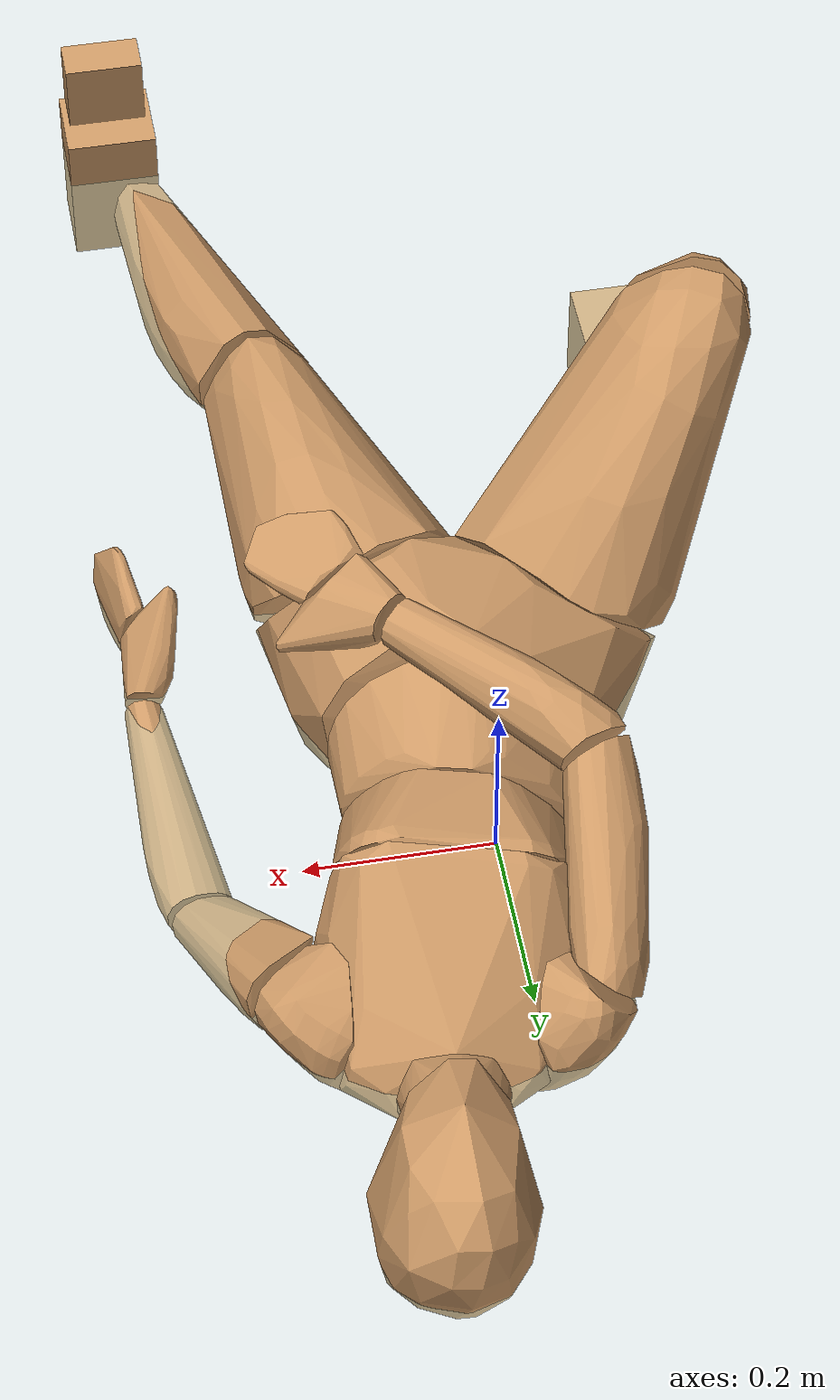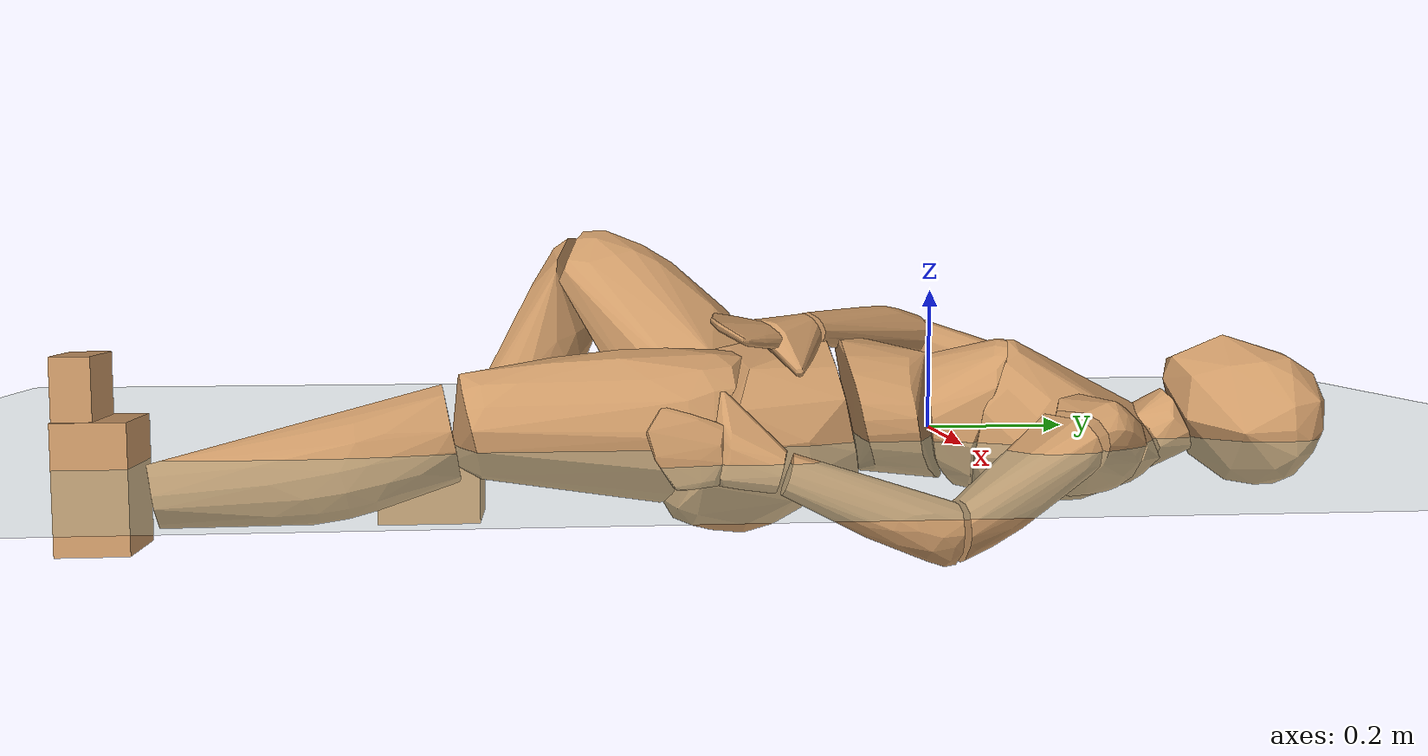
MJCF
<mujoco model="humanoid">
  <compiler coordinate="local"/>
  <default>
    <joint damping="0.0" armature="0.01" stiffness="0.0" limited="true"/>
    <geom conaffinity="1" condim="3" contype="7" margin="0.001" rgba="0.8 0.6 .4 1"/>
  </default>
  <asset>
    <texture type="skybox" builtin="gradient" rgb1=".4 .5 .6" rgb2="0 0 0" width="100" height="100"/>
    <texture builtin="flat" height="1278" mark="cross" markrgb="1 1 1" name="texgeom" random="0.01" rgb1="0.8 0.6 0.4" rgb2="0.8 0.6 0.4" type="cube" width="127"/>
    <texture builtin="checker" height="100" name="texplane" rgb1="0 0 0" rgb2="0.8 0.8 0.8" type="2d" width="100"/>
    <material name="MatPlane" reflectance="0.5" shininess="1" specular="1" texrepeat="60 60" texture="texplane"/>
    <material name="geom" texture="texgeom" texuniform="true"/>
    <mesh file="smpl_meshes/geom/Pelvis.stl" name="Pelvis_mesh"/>
    <mesh file="smpl_meshes/geom/L_Hip.stl" name="L_Hip_mesh"/>
    <mesh file="smpl_meshes/geom/R_Hip.stl" name="R_Hip_mesh"/>
    <mesh file="smpl_meshes/geom/Torso.stl" name="Torso_mesh"/>
    <mesh file="smpl_meshes/geom/L_Knee.stl" name="L_Knee_mesh"/>
    <mesh file="smpl_meshes/geom/R_Knee.stl" name="R_Knee_mesh"/>
    <mesh file="smpl_meshes/geom/Spine.stl" name="Spine_mesh"/>
    <mesh file="smpl_meshes/geom/L_Ankle.stl" name="L_Ankle_mesh"/>
    <mesh file="smpl_meshes/geom/R_Ankle.stl" name="R_Ankle_mesh"/>
    <mesh file="smpl_meshes/geom/Chest.stl" name="Chest_mesh"/>
    <mesh file="smpl_meshes/geom/L_Toe.stl" name="L_Toe_mesh"/>
    <mesh file="smpl_meshes/geom/R_Toe.stl" name="R_Toe_mesh"/>
    <mesh file="smpl_meshes/geom/Neck.stl" name="Neck_mesh"/>
    <mesh file="smpl_meshes/geom/L_Thorax.stl" name="L_Thorax_mesh"/>
    <mesh file="smpl_meshes/geom/R_Thorax.stl" name="R_Thorax_mesh"/>
    <mesh file="smpl_meshes/geom/Head.stl" name="Head_mesh"/>
    <mesh file="smpl_meshes/geom/L_Shoulder.stl" name="L_Shoulder_mesh"/>
    <mesh file="smpl_meshes/geom/R_Shoulder.stl" name="R_Shoulder_mesh"/>
    <mesh file="smpl_meshes/geom/L_Elbow.stl" name="L_Elbow_mesh"/>
    <mesh file="smpl_meshes/geom/R_Elbow.stl" name="R_Elbow_mesh"/>
    <mesh file="smpl_meshes/geom/L_Wrist.stl" name="L_Wrist_mesh"/>
    <mesh file="smpl_meshes/geom/R_Wrist.stl" name="R_Wrist_mesh"/>
    <mesh file="smpl_meshes/geom/L_Hand.stl" name="L_Hand_mesh"/>
    <mesh file="smpl_meshes/geom/R_Hand.stl" name="R_Hand_mesh"/>
  </asset>
  <worldbody>
    <light cutoff="100" diffuse="1 1 1" dir="-0 0 -1.3" directional="true" exponent="1" pos="0 0 1.3" specular=".1 .1 .1"/>
    <geom conaffinity="1" condim="3" name="floor" pos="0 0 0" rgba="0.8 0.9 0.8 1" size="100 100 .2" type="plane" material="MatPlane"/>
    <body name="Pelvis" pos="0.0001 -0.2202 0.0181">
      <freejoint name="Pelvis"/>
      <geom type="mesh" mesh="Pelvis_mesh" density="1000" contype="1" conaffinity="1"/>
      <body name="L_Hip" pos="0.055 -0.1072 -0.0155">
        <joint name="L_Hip_x" type="hinge" pos="0 0 0" axis="1 0 0" user="800 80 1 500" armature="0.01" range="-90.0000 90.0000" damping="0.1" stiffness="10"/>
        <joint name="L_Hip_y" type="hinge" pos="0 0 0" axis="0 1 0" user="800 80 1 500" armature="0.01" range="-90.0000 90.0000" damping="0.1" stiffness="10"/>
        <joint name="L_Hip_z" type="hinge" pos="0 0 0" axis="0 0 1" user="800 80 1 500" armature="0.01" range="-90.0000 90.0000" damping="0.1" stiffness="10"/>
        <geom type="mesh" mesh="L_Hip_mesh" density="1000" contype="1" conaffinity="1"/>
        <body name="L_Knee" pos="0.1071 -0.368 0.0226">
          <joint name="L_Knee_x" type="hinge" pos="0 0 0" axis="1 0 0" user="800 80 1 500" armature="0.01" range="-180.0000 180.0000" damping="0.1" stiffness="10"/>
          <joint name="L_Knee_y" type="hinge" pos="0 0 0" axis="0 1 0" user="800 80 1 500" armature="0.01" range="-5.6250 5.6250" damping="0.1" stiffness="10"/>
          <joint name="L_Knee_z" type="hinge" pos="0 0 0" axis="0 0 1" user="800 80 1 500" armature="0.01" range="-5.6250 5.6250" damping="0.1" stiffness="10"/>
          <geom type="mesh" mesh="L_Knee_mesh" density="1000" contype="1" conaffinity="1"/>
          <body name="L_Ankle" pos="0.0634 -0.3875 -0.0732">
            <joint name="L_Ankle_x" type="hinge" pos="0 0 0" axis="1 0 0" user="800 80 1 500" armature="0.01" range="-90.0000 90.0000" damping="0.1" stiffness="10"/>
            <joint name="L_Ankle_y" type="hinge" pos="0 0 0" axis="0 1 0" user="800 80 1 500" armature="0.01" range="-90.0000 90.0000" damping="0.1" stiffness="10"/>
            <joint name="L_Ankle_z" type="hinge" pos="0 0 0" axis="0 0 1" user="800 80 1 500" armature="0.01" range="-90.0000 90.0000" damping="0.1" stiffness="10"/>
            <geom density="411.45657" type="box" pos="0.0267 -0.0208 0.0212" size="0.0519 0.0452 0.0824" quat="1.0000 0.0000 0.0000 0.0000"/>
            <body name="L_Toe" pos="0.036 -0.0612 0.1109">
              <joint name="L_Toe_x" type="hinge" pos="0 0 0" axis="1 0 0" user="500 50 1 500" armature="0.01" range="-90.0000 90.0000" damping="0.1" stiffness="10"/>
              <joint name="L_Toe_y" type="hinge" pos="0 0 0" axis="0 1 0" user="500 50 1 500" armature="0.01" range="-45.0000 45.0000" damping="0.1" stiffness="10"/>
              <joint name="L_Toe_z" type="hinge" pos="0 0 0" axis="0 0 1" user="500 50 1 500" armature="0.01" range="-45.0000 45.0000" damping="0.1" stiffness="10"/>
              <geom density="328.79666" type="box" pos="-0.0094 0.0196 0.0235" size="0.0447 0.0243 0.049" quat="1.0000 0.0000 0.0000 0.0000"/>
            </body>
          </body>
        </body>
      </body>
      <body name="R_Hip" pos="-0.0866 -0.0787 -0.0134">
        <joint name="R_Hip_x" type="hinge" pos="0 0 0" axis="1 0 0" user="800 80 1 500" armature="0.01" range="-90.0000 90.0000" damping="0.1" stiffness="10"/>
        <joint name="R_Hip_y" type="hinge" pos="0 0 0" axis="0 1 0" user="800 80 1 500" armature="0.01" range="-90.0000 90.0000" damping="0.1" stiffness="10"/>
        <joint name="R_Hip_z" type="hinge" pos="0 0 0" axis="0 0 1" user="800 80 1 500" armature="0.01" range="-90.0000 90.0000" damping="0.1" stiffness="10"/>
        <geom type="mesh" mesh="R_Hip_mesh" density="1000" contype="1" conaffinity="1"/>
        <body name="R_Knee" pos="-0.2448 -0.2097 0.2222">
          <joint name="R_Knee_x" type="hinge" pos="0 0 0" axis="1 0 0" user="800 80 1 500" armature="0.01" range="-180.0000 180.0000" damping="0.1" stiffness="10"/>
          <joint name="R_Knee_y" type="hinge" pos="0 0 0" axis="0 1 0" user="800 80 1 500" armature="0.01" range="-5.6250 5.6250" damping="0.1" stiffness="10"/>
          <joint name="R_Knee_z" type="hinge" pos="0 0 0" axis="0 0 1" user="800 80 1 500" armature="0.01" range="-5.6250 5.6250" damping="0.1" stiffness="10"/>
          <geom type="mesh" mesh="R_Knee_mesh" density="1000" contype="1" conaffinity="1"/>
          <body name="R_Ankle" pos="0.0414 -0.2086 -0.3367">
            <joint name="R_Ankle_x" type="hinge" pos="0 0 0" axis="1 0 0" user="800 80 1 500" armature="0.01" range="-90.0000 90.0000" damping="0.1" stiffness="10"/>
            <joint name="R_Ankle_y" type="hinge" pos="0 0 0" axis="0 1 0" user="800 80 1 500" armature="0.01" range="-90.0000 90.0000" damping="0.1" stiffness="10"/>
            <joint name="R_Ankle_z" type="hinge" pos="0 0 0" axis="0 0 1" user="800 80 1 500" armature="0.01" range="-90.0000 90.0000" damping="0.1" stiffness="10"/>
            <geom density="236.93112" type="box" pos="-0.0345 -0.0359 -0.0094" size="0.0704 0.0809 0.0601" quat="1.0000 0.0000 0.0000 0.0000"/>
            <body name="R_Toe" pos="-0.0825 -0.1018 0.0101">
              <joint name="R_Toe_x" type="hinge" pos="0 0 0" axis="1 0 0" user="500 50 1 500" armature="0.01" range="-90.0000 90.0000" damping="0.1" stiffness="10"/>
              <joint name="R_Toe_y" type="hinge" pos="0 0 0" axis="0 1 0" user="500 50 1 500" armature="0.01" range="-45.0000 45.0000" damping="0.1" stiffness="10"/>
              <joint name="R_Toe_z" type="hinge" pos="0 0 0" axis="0 0 1" user="500 50 1 500" armature="0.01" range="-45.0000 45.0000" damping="0.1" stiffness="10"/>
              <geom density="256.10785" type="box" pos="0.0480 0.0357 0.0035" size="0.0396 0.0507 0.0338" quat="1.0000 0.0000 0.0000 0.0000"/>
            </body>
          </body>
        </body>
      </body>
      <body name="Torso" pos="0.0173 0.1051 -0.0135">
        <joint name="Torso_x" type="hinge" pos="0 0 0" axis="1 0 0" user="1000 100 1 500" armature="0.01" range="-60.0000 60.0000" damping="0.1" stiffness="10"/>
        <joint name="Torso_y" type="hinge" pos="0 0 0" axis="0 1 0" user="1000 100 1 500" armature="0.01" range="-60.0000 60.0000" damping="0.1" stiffness="10"/>
        <joint name="Torso_z" type="hinge" pos="0 0 0" axis="0 0 1" user="1000 100 1 500" armature="0.01" range="-60.0000 60.0000" damping="0.1" stiffness="10"/>
        <geom type="mesh" mesh="Torso_mesh" density="1000" contype="1" conaffinity="1"/>
        <body name="Spine" pos="0.0291 0.1408 0.0031">
          <joint name="Spine_x" type="hinge" pos="0 0 0" axis="1 0 0" user="1000 100 1 500" armature="0.01" range="-60.0000 60.0000" damping="0.1" stiffness="10"/>
          <joint name="Spine_y" type="hinge" pos="0 0 0" axis="0 1 0" user="1000 100 1 500" armature="0.01" range="-60.0000 60.0000" damping="0.1" stiffness="10"/>
          <joint name="Spine_z" type="hinge" pos="0 0 0" axis="0 0 1" user="1000 100 1 500" armature="0.01" range="-60.0000 60.0000" damping="0.1" stiffness="10"/>
          <geom type="mesh" mesh="Spine_mesh" density="1000" contype="1" conaffinity="1"/>
          <body name="Chest" pos="0.0101 0.05 0.0298">
            <joint name="Chest_x" type="hinge" pos="0 0 0" axis="1 0 0" user="1000 100 1 500" armature="0.01" range="-60.0000 60.0000" damping="0.1" stiffness="10"/>
            <joint name="Chest_y" type="hinge" pos="0 0 0" axis="0 1 0" user="1000 100 1 500" armature="0.01" range="-60.0000 60.0000" damping="0.1" stiffness="10"/>
            <joint name="Chest_z" type="hinge" pos="0 0 0" axis="0 0 1" user="1000 100 1 500" armature="0.01" range="-60.0000 60.0000" damping="0.1" stiffness="10"/>
            <geom type="mesh" mesh="Chest_mesh" density="1000" contype="1" conaffinity="1"/>
            <body name="Neck" pos="0.0402 0.2059 -0.0481">
              <joint name="Neck_x" type="hinge" pos="0 0 0" axis="1 0 0" user="500 50 1 250" armature="0.01" range="-180.0000 180.0000" damping="0.1" stiffness="10"/>
              <joint name="Neck_y" type="hinge" pos="0 0 0" axis="0 1 0" user="500 50 1 250" armature="0.01" range="-180.0000 180.0000" damping="0.1" stiffness="10"/>
              <joint name="Neck_z" type="hinge" pos="0 0 0" axis="0 0 1" user="500 50 1 250" armature="0.01" range="-180.0000 180.0000" damping="0.1" stiffness="10"/>
              <geom type="mesh" mesh="Neck_mesh" density="1000" contype="1" conaffinity="1"/>
              <body name="Head" pos="0.0134 0.0643 0.0513">
                <joint name="Head_x" type="hinge" pos="0 0 0" axis="1 0 0" user="500 50 1 250" armature="0.01" range="-90.0000 90.0000" damping="0.1" stiffness="10"/>
                <joint name="Head_y" type="hinge" pos="0 0 0" axis="0 1 0" user="500 50 1 250" armature="0.01" range="-90.0000 90.0000" damping="0.1" stiffness="10"/>
                <joint name="Head_z" type="hinge" pos="0 0 0" axis="0 0 1" user="500 50 1 250" armature="0.01" range="-90.0000 90.0000" damping="0.1" stiffness="10"/>
                <geom type="mesh" mesh="Head_mesh" density="1000" contype="1" conaffinity="1"/>
              </body>
            </body>
            <body name="L_Thorax" pos="0.0889 0.1018 -0.032">
              <joint name="L_Thorax_x" type="hinge" pos="0 0 0" axis="1 0 0" user="500 50 1 500" armature="0.01" range="-180.0000 180.0000" damping="0.1" stiffness="10"/>
              <joint name="L_Thorax_y" type="hinge" pos="0 0 0" axis="0 1 0" user="500 50 1 500" armature="0.01" range="-180.0000 180.0000" damping="0.1" stiffness="10"/>
              <joint name="L_Thorax_z" type="hinge" pos="0 0 0" axis="0 0 1" user="500 50 1 500" armature="0.01" range="-180.0000 180.0000" damping="0.1" stiffness="10"/>
              <geom type="mesh" mesh="L_Thorax_mesh" density="1000" contype="1" conaffinity="1"/>
              <body name="L_Shoulder" pos="0.0806 -0.0115 0.0135">
                <joint name="L_Shoulder_x" type="hinge" pos="0 0 0" axis="1 0 0" user="500 50 1 500" armature="0.01" range="-180.0000 180.0000" damping="0.1" stiffness="10"/>
                <joint name="L_Shoulder_y" type="hinge" pos="0 0 0" axis="0 1 0" user="500 50 1 500" armature="0.01" range="-180.0000 180.0000" damping="0.1" stiffness="10"/>
                <joint name="L_Shoulder_z" type="hinge" pos="0 0 0" axis="0 0 1" user="500 50 1 500" armature="0.01" range="-180.0000 180.0000" damping="0.1" stiffness="10"/>
                <geom type="mesh" mesh="L_Shoulder_mesh" density="1000" contype="1" conaffinity="1"/>
                <body name="L_Elbow" pos="0.0758 -0.2063 -0.1344">
                  <joint name="L_Elbow_x" type="hinge" pos="0 0 0" axis="1 0 0" user="500 50 1 150" armature="0.01" range="-720.0000 720.0000" damping="0.1" stiffness="10"/>
                  <joint name="L_Elbow_y" type="hinge" pos="0 0 0" axis="0 1 0" user="500 50 1 150" armature="0.01" range="-720.0000 720.0000" damping="0.1" stiffness="10"/>
                  <joint name="L_Elbow_z" type="hinge" pos="0 0 0" axis="0 0 1" user="500 50 1 150" armature="0.01" range="-720.0000 720.0000" damping="0.1" stiffness="10"/>
                  <geom type="mesh" mesh="L_Elbow_mesh" density="1000" contype="1" conaffinity="1"/>
                  <body name="L_Wrist" pos="0.0292 -0.2201 0.1005">
                    <joint name="L_Wrist_x" type="hinge" pos="0 0 0" axis="1 0 0" user="300 30 1 150" armature="0.01" range="-180.0000 180.0000" damping="0.1" stiffness="10"/>
                    <joint name="L_Wrist_y" type="hinge" pos="0 0 0" axis="0 1 0" user="300 30 1 150" armature="0.01" range="-180.0000 180.0000" damping="0.1" stiffness="10"/>
                    <joint name="L_Wrist_z" type="hinge" pos="0 0 0" axis="0 0 1" user="300 30 1 150" armature="0.01" range="-180.0000 180.0000" damping="0.1" stiffness="10"/>
                    <geom type="mesh" mesh="L_Wrist_mesh" density="1000" contype="1" conaffinity="1"/>
                    <body name="L_Hand" pos="0.001 -0.0796 0.0162">
                      <joint name="L_Hand_x" type="hinge" pos="0 0 0" axis="1 0 0" user="300 30 1 150" armature="0.01" range="-180.0000 180.0000" damping="0.1" stiffness="10"/>
                      <joint name="L_Hand_y" type="hinge" pos="0 0 0" axis="0 1 0" user="300 30 1 150" armature="0.01" range="-180.0000 180.0000" damping="0.1" stiffness="10"/>
                      <joint name="L_Hand_z" type="hinge" pos="0 0 0" axis="0 0 1" user="300 30 1 150" armature="0.01" range="-180.0000 180.0000" damping="0.1" stiffness="10"/>
                      <geom type="mesh" mesh="L_Hand_mesh" density="1000" contype="1" conaffinity="1"/>
                    </body>
                  </body>
                </body>
              </body>
            </body>
            <body name="R_Thorax" pos="-0.0427 0.1241 -0.0447">
              <joint name="R_Thorax_x" type="hinge" pos="0 0 0" axis="1 0 0" user="500 50 1 150" armature="0.01" range="-180.0000 180.0000" damping="0.1" stiffness="10"/>
              <joint name="R_Thorax_y" type="hinge" pos="0 0 0" axis="0 1 0" user="500 50 1 150" armature="0.01" range="-180.0000 180.0000" damping="0.1" stiffness="10"/>
              <joint name="R_Thorax_z" type="hinge" pos="0 0 0" axis="0 0 1" user="500 50 1 150" armature="0.01" range="-180.0000 180.0000" damping="0.1" stiffness="10"/>
              <geom type="mesh" mesh="R_Thorax_mesh" density="1000" contype="1" conaffinity="1"/>
              <body name="R_Shoulder" pos="-0.075 0.0217 0.0401">
                <joint name="R_Shoulder_x" type="hinge" pos="0 0 0" axis="1 0 0" user="500 50 1 250" armature="0.01" range="-180.0000 180.0000" damping="0.1" stiffness="10"/>
                <joint name="R_Shoulder_y" type="hinge" pos="0 0 0" axis="0 1 0" user="500 50 1 250" armature="0.01" range="-180.0000 180.0000" damping="0.1" stiffness="10"/>
                <joint name="R_Shoulder_z" type="hinge" pos="0 0 0" axis="0 0 1" user="500 50 1 250" armature="0.01" range="-180.0000 180.0000" damping="0.1" stiffness="10"/>
                <geom type="mesh" mesh="R_Shoulder_mesh" density="1000" contype="1" conaffinity="1"/>
                <body name="R_Elbow" pos="-0.043 -0.232 0.093">
                  <joint name="R_Elbow_x" type="hinge" pos="0 0 0" axis="1 0 0" user="500 50 1 150" armature="0.01" range="-720.0000 720.0000" damping="0.1" stiffness="10"/>
                  <joint name="R_Elbow_y" type="hinge" pos="0 0 0" axis="0 1 0" user="500 50 1 150" armature="0.01" range="-720.0000 720.0000" damping="0.1" stiffness="10"/>
                  <joint name="R_Elbow_z" type="hinge" pos="0 0 0" axis="0 0 1" user="500 50 1 150" armature="0.01" range="-720.0000 720.0000" damping="0.1" stiffness="10"/>
                  <geom type="mesh" mesh="R_Elbow_mesh" density="1000" contype="1" conaffinity="1"/>
                  <body name="R_Wrist" pos="0.1731 -0.1836 0.0258">
                    <joint name="R_Wrist_x" type="hinge" pos="0 0 0" axis="1 0 0" user="300 30 1 150" armature="0.01" range="-180.0000 180.0000" damping="0.1" stiffness="10"/>
                    <joint name="R_Wrist_y" type="hinge" pos="0 0 0" axis="0 1 0" user="300 30 1 150" armature="0.01" range="-180.0000 180.0000" damping="0.1" stiffness="10"/>
                    <joint name="R_Wrist_z" type="hinge" pos="0 0 0" axis="0 0 1" user="300 30 1 150" armature="0.01" range="-180.0000 180.0000" damping="0.1" stiffness="10"/>
                    <geom type="mesh" mesh="R_Wrist_mesh" density="1000" contype="1" conaffinity="1"/>
                    <body name="R_Hand" pos="0.0501 -0.0647 0.0003">
                      <joint name="R_Hand_x" type="hinge" pos="0 0 0" axis="1 0 0" user="300 30 1 150" armature="0.01" range="-180.0000 180.0000" damping="0.1" stiffness="10"/>
                      <joint name="R_Hand_y" type="hinge" pos="0 0 0" axis="0 1 0" user="300 30 1 150" armature="0.01" range="-180.0000 180.0000" damping="0.1" stiffness="10"/>
                      <joint name="R_Hand_z" type="hinge" pos="0 0 0" axis="0 0 1" user="300 30 1 150" armature="0.01" range="-180.0000 180.0000" damping="0.1" stiffness="10"/>
                      <geom type="mesh" mesh="R_Hand_mesh" density="1000" contype="1" conaffinity="1"/>
                    </body>
                  </body>
                </body>
              </body>
            </body>
          </body>
        </body>
      </body>
    </body>
  </worldbody>
  <actuator>
    <motor name="L_Hip_x" joint="L_Hip_x" gear="1"/>
    <motor name="L_Hip_y" joint="L_Hip_y" gear="1"/>
    <motor name="L_Hip_z" joint="L_Hip_z" gear="1"/>
    <motor name="L_Knee_x" joint="L_Knee_x" gear="1"/>
    <motor name="L_Knee_y" joint="L_Knee_y" gear="1"/>
    <motor name="L_Knee_z" joint="L_Knee_z" gear="1"/>
    <motor name="L_Ankle_x" joint="L_Ankle_x" gear="1"/>
    <motor name="L_Ankle_y" joint="L_Ankle_y" gear="1"/>
    <motor name="L_Ankle_z" joint="L_Ankle_z" gear="1"/>
    <motor name="L_Toe_x" joint="L_Toe_x" gear="1"/>
    <motor name="L_Toe_y" joint="L_Toe_y" gear="1"/>
    <motor name="L_Toe_z" joint="L_Toe_z" gear="1"/>
    <motor name="R_Hip_x" joint="R_Hip_x" gear="1"/>
    <motor name="R_Hip_y" joint="R_Hip_y" gear="1"/>
    <motor name="R_Hip_z" joint="R_Hip_z" gear="1"/>
    <motor name="R_Knee_x" joint="R_Knee_x" gear="1"/>
    <motor name="R_Knee_y" joint="R_Knee_y" gear="1"/>
    <motor name="R_Knee_z" joint="R_Knee_z" gear="1"/>
    <motor name="R_Ankle_x" joint="R_Ankle_x" gear="1"/>
    <motor name="R_Ankle_y" joint="R_Ankle_y" gear="1"/>
    <motor name="R_Ankle_z" joint="R_Ankle_z" gear="1"/>
    <motor name="R_Toe_x" joint="R_Toe_x" gear="1"/>
    <motor name="R_Toe_y" joint="R_Toe_y" gear="1"/>
    <motor name="R_Toe_z" joint="R_Toe_z" gear="1"/>
    <motor name="Torso_x" joint="Torso_x" gear="1"/>
    <motor name="Torso_y" joint="Torso_y" gear="1"/>
    <motor name="Torso_z" joint="Torso_z" gear="1"/>
    <motor name="Spine_x" joint="Spine_x" gear="1"/>
    <motor name="Spine_y" joint="Spine_y" gear="1"/>
    <motor name="Spine_z" joint="Spine_z" gear="1"/>
    <motor name="Chest_x" joint="Chest_x" gear="1"/>
    <motor name="Chest_y" joint="Chest_y" gear="1"/>
    <motor name="Chest_z" joint="Chest_z" gear="1"/>
    <motor name="Neck_x" joint="Neck_x" gear="1"/>
    <motor name="Neck_y" joint="Neck_y" gear="1"/>
    <motor name="Neck_z" joint="Neck_z" gear="1"/>
    <motor name="Head_x" joint="Head_x" gear="1"/>
    <motor name="Head_y" joint="Head_y" gear="1"/>
    <motor name="Head_z" joint="Head_z" gear="1"/>
    <motor name="L_Thorax_x" joint="L_Thorax_x" gear="1"/>
    <motor name="L_Thorax_y" joint="L_Thorax_y" gear="1"/>
    <motor name="L_Thorax_z" joint="L_Thorax_z" gear="1"/>
    <motor name="L_Shoulder_x" joint="L_Shoulder_x" gear="1"/>
    <motor name="L_Shoulder_y" joint="L_Shoulder_y" gear="1"/>
    <motor name="L_Shoulder_z" joint="L_Shoulder_z" gear="1"/>
    <motor name="L_Elbow_x" joint="L_Elbow_x" gear="1"/>
    <motor name="L_Elbow_y" joint="L_Elbow_y" gear="1"/>
    <motor name="L_Elbow_z" joint="L_Elbow_z" gear="1"/>
    <motor name="L_Wrist_x" joint="L_Wrist_x" gear="1"/>
    <motor name="L_Wrist_y" joint="L_Wrist_y" gear="1"/>
    <motor name="L_Wrist_z" joint="L_Wrist_z" gear="1"/>
    <motor name="L_Hand_x" joint="L_Hand_x" gear="1"/>
    <motor name="L_Hand_y" joint="L_Hand_y" gear="1"/>
    <motor name="L_Hand_z" joint="L_Hand_z" gear="1"/>
    <motor name="R_Thorax_x" joint="R_Thorax_x" gear="1"/>
    <motor name="R_Thorax_y" joint="R_Thorax_y" gear="1"/>
    <motor name="R_Thorax_z" joint="R_Thorax_z" gear="1"/>
    <motor name="R_Shoulder_x" joint="R_Shoulder_x" gear="1"/>
    <motor name="R_Shoulder_y" joint="R_Shoulder_y" gear="1"/>
    <motor name="R_Shoulder_z" joint="R_Shoulder_z" gear="1"/>
    <motor name="R_Elbow_x" joint="R_Elbow_x" gear="1"/>
    <motor name="R_Elbow_y" joint="R_Elbow_y" gear="1"/>
    <motor name="R_Elbow_z" joint="R_Elbow_z" gear="1"/>
    <motor name="R_Wrist_x" joint="R_Wrist_x" gear="1"/>
    <motor name="R_Wrist_y" joint="R_Wrist_y" gear="1"/>
    <motor name="R_Wrist_z" joint="R_Wrist_z" gear="1"/>
    <motor name="R_Hand_x" joint="R_Hand_x" gear="1"/>
    <motor name="R_Hand_y" joint="R_Hand_y" gear="1"/>
    <motor name="R_Hand_z" joint="R_Hand_z" gear="1"/>
  </actuator>
  <contact>
    <exclude body1="Torso" body2="Chest"/>
    <exclude body1="Head" body2="Chest"/>
    <exclude body1="R_Knee" body2="R_Toe"/>
    <exclude body1="R_Knee" body2="L_Ankle"/>
    <exclude body1="R_Knee" body2="L_Toe"/>
    <exclude body1="L_Knee" body2="L_Toe"/>
    <exclude body1="L_Knee" body2="R_Ankle"/>
    <exclude body1="L_Knee" body2="R_Toe"/>
    <exclude body1="L_Shoulder" body2="Chest"/>
    <exclude body1="R_Shoulder" body2="Chest"/>
  </contact>
  <sensor/>
  <size njmax="2500" nconmax="500"/>
</mujoco>
